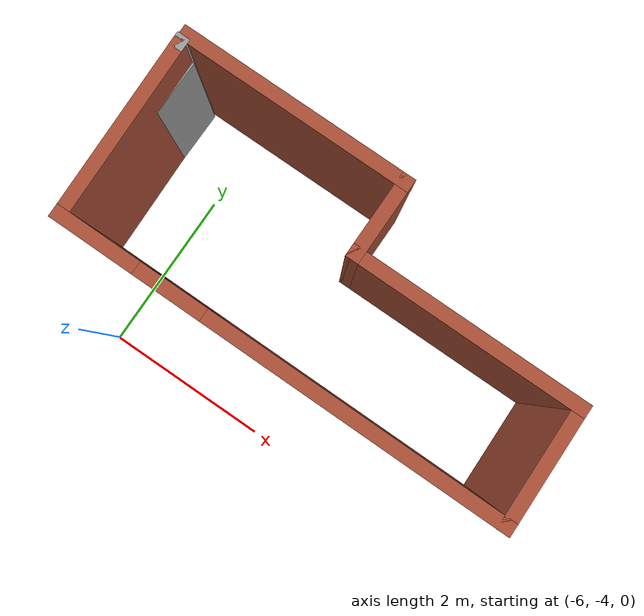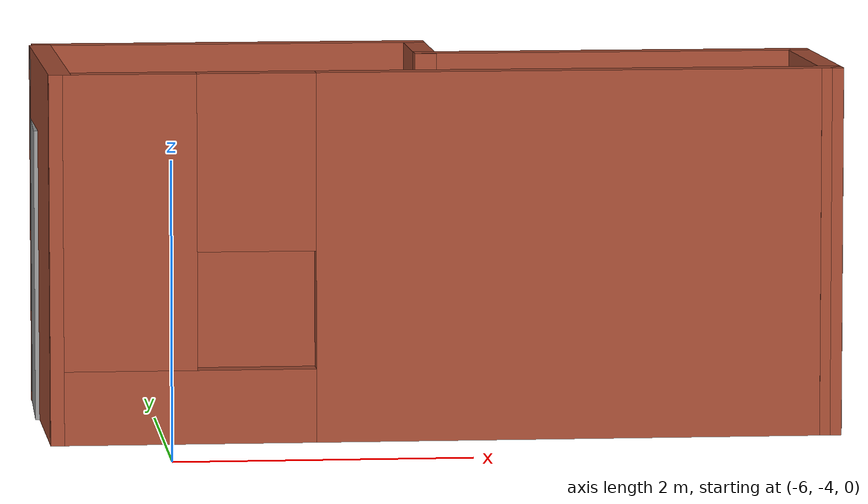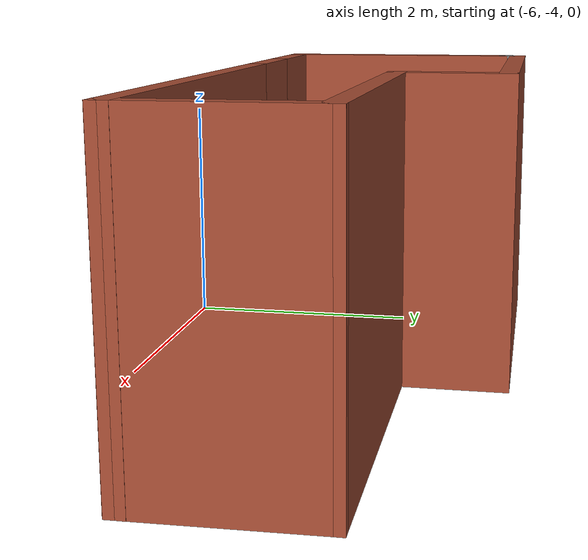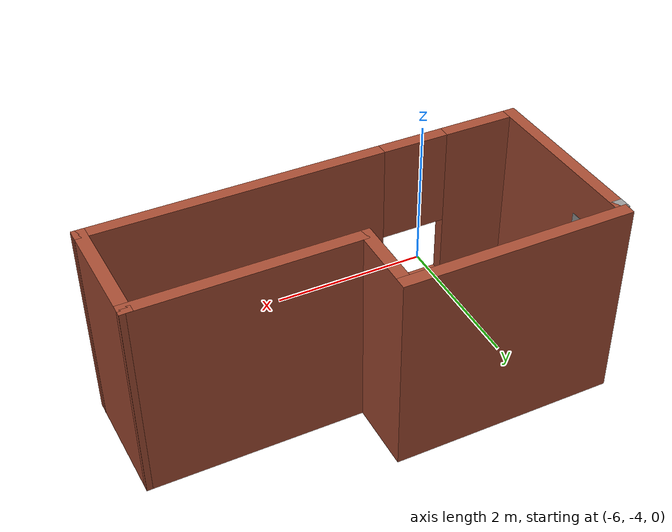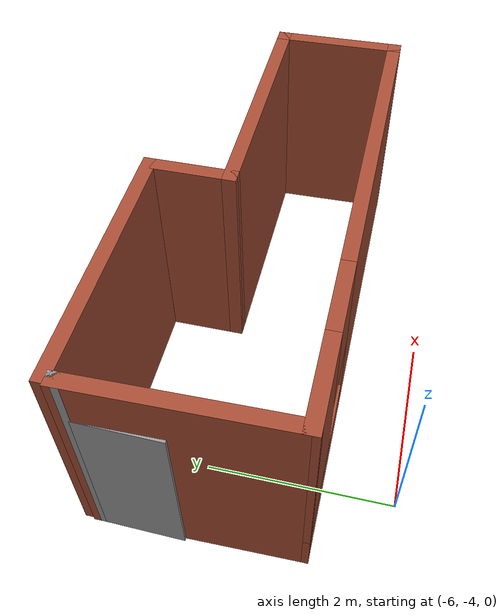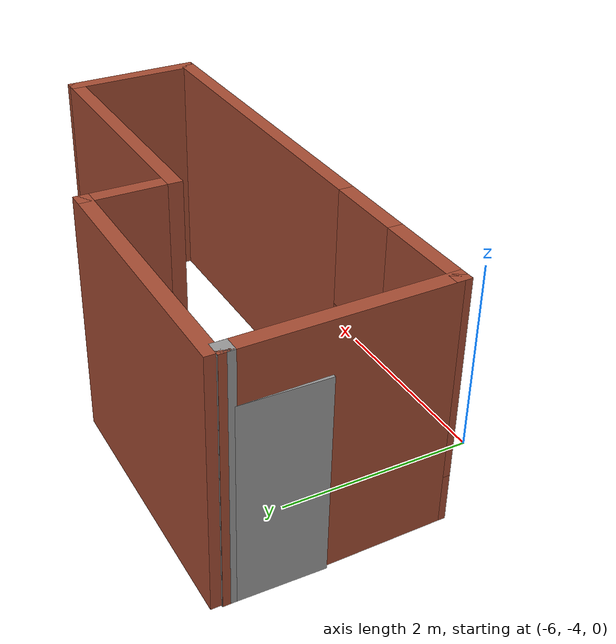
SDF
<?xml version='1.0'?>
<sdf version='1.6'>
  <model name='test'>
    <pose frame=''>-4.11192 -2.0767 0 0 -0 0</pose>
    <link name='Door_1'>
      <collision name='Door_1_Collision'>
        <geometry>
          <box>
            <size>0.9 0.17 2</size>
          </box>
        </geometry>
        <pose frame=''>0 0 1 0 -0 0</pose>
      </collision>
      <visual name='Door_1_Visual'>
        <pose frame=''>0 0 1 0 -0 0</pose>
        <geometry>
          <box>
            <size>0.9 0.17 2</size>
          </box>
        </geometry>
        <material>
          <script>
            <uri>file://media/materials/scripts/gazebo.material</uri>
            <name>Gazebo/Grey</name>
          </script>
        </material>
      </visual>
      <pose frame=''>-2.61797 0.540211 0 0 0 -1.58586</pose>
    </link>
    <link name='Wall_0'>
      <collision name='Wall_0_Collision'>
        <geometry>
          <box>
            <size>2.75 0.15 2.5</size>
          </box>
        </geometry>
        <pose frame=''>0 0 1.25 0 -0 0</pose>
      </collision>
      <visual name='Wall_0_Visual'>
        <pose frame=''>0 0 1.25 0 -0 0</pose>
        <geometry>
          <box>
            <size>2.75 0.15 2.5</size>
          </box>
        </geometry>
        <material>
          <script>
            <uri>file://media/materials/scripts/gazebo.material</uri>
            <name>Gazebo/Bricks</name>
          </script>
          <ambient>1 1 1 1</ambient>
        </material>
      </visual>
      <pose frame=''>-1.30408 1.0877 0 0 -0 0</pose>
    </link>
    <link name='Wall_1'>
      <collision name='Wall_1_Collision'>
        <geometry>
          <box>
            <size>1 0.15 2.5</size>
          </box>
        </geometry>
        <pose frame=''>0 0 1.25 0 -0 0</pose>
      </collision>
      <visual name='Wall_1_Visual'>
        <pose frame=''>0 0 1.25 0 -0 0</pose>
        <geometry>
          <box>
            <size>1 0.15 2.5</size>
          </box>
        </geometry>
        <material>
          <script>
            <uri>file://media/materials/scripts/gazebo.material</uri>
            <name>Gazebo/Bricks</name>
          </script>
          <ambient>1 1 1 1</ambient>
        </material>
      </visual>
      <pose frame=''>-0.004077 0.662696 0 0 0 -1.5708</pose>
    </link>
    <link name='Wall_2'>
      <collision name='Wall_2_Collision'>
        <geometry>
          <box>
            <size>2.75 0.15 2.5</size>
          </box>
        </geometry>
        <pose frame=''>0 0 1.25 0 -0 0</pose>
      </collision>
      <visual name='Wall_2_Visual'>
        <pose frame=''>0 0 1.25 0 -0 0</pose>
        <geometry>
          <box>
            <size>2.75 0.15 2.5</size>
          </box>
        </geometry>
        <material>
          <script>
            <uri>file://media/materials/scripts/gazebo.material</uri>
            <name>Gazebo/Bricks</name>
          </script>
          <ambient>1 1 1 1</ambient>
        </material>
      </visual>
      <pose frame=''>1.29592 0.237696 0 0 -0 0</pose>
    </link>
    <link name='Wall_3'>
      <collision name='Wall_3_Collision'>
        <geometry>
          <box>
            <size>1.47412 0.15 2.5</size>
          </box>
        </geometry>
        <pose frame=''>0 0 1.25 0 -0 0</pose>
      </collision>
      <visual name='Wall_3_Visual'>
        <pose frame=''>0 0 1.25 0 -0 0</pose>
        <geometry>
          <box>
            <size>1.47412 0.15 2.5</size>
          </box>
        </geometry>
        <material>
          <script>
            <uri>file://media/materials/scripts/gazebo.material</uri>
            <name>Gazebo/Bricks</name>
          </script>
          <ambient>1 1 1 1</ambient>
        </material>
      </visual>
      <pose frame=''>2.60892 -0.424304 0 0 0 -1.55116</pose>
    </link>
    <link name='Wall_4'>
      <pose frame=''>0.017923 -1.0813 0 0 -0 3.13967</pose>
      <visual name='Wall_4_Visual_0'>
        <pose frame=''>-0.89546 0 1.25 0 -0 0</pose>
        <geometry>
          <box>
            <size>3.56697 0.15 2.5</size>
          </box>
        </geometry>
        <material>
          <script>
            <uri>file://media/materials/scripts/gazebo.material</uri>
            <name>Gazebo/Bricks</name>
          </script>
          <ambient>1 1 1 1</ambient>
        </material>
      </visual>
      <collision name='Wall_4_Collision_0'>
        <geometry>
          <box>
            <size>3.56697 0.15 2.5</size>
          </box>
        </geometry>
        <pose frame=''>-0.89546 0 1.25 0 -0 0</pose>
      </collision>
      <visual name='Wall_4_Visual_1'>
        <pose frame=''>1.78348 0 0.25 0 -0 0</pose>
        <geometry>
          <box>
            <size>1.79092 0.15 0.5</size>
          </box>
        </geometry>
        <material>
          <script>
            <uri>file://media/materials/scripts/gazebo.material</uri>
            <name>Gazebo/Bricks</name>
          </script>
          <ambient>1 1 1 1</ambient>
        </material>
      </visual>
      <collision name='Wall_4_Collision_1'>
        <geometry>
          <box>
            <size>1.79092 0.15 0.5</size>
          </box>
        </geometry>
        <pose frame=''>1.78348 0 0.25 0 -0 0</pose>
      </collision>
      <visual name='Wall_4_Visual_2'>
        <pose frame=''>2.18348 0 1.5 0 -0 0</pose>
        <geometry>
          <box>
            <size>0.99092 0.15 2</size>
          </box>
        </geometry>
        <material>
          <script>
            <uri>file://media/materials/scripts/gazebo.material</uri>
            <name>Gazebo/Bricks</name>
          </script>
          <ambient>1 1 1 1</ambient>
        </material>
      </visual>
      <collision name='Wall_4_Collision_2'>
        <geometry>
          <box>
            <size>0.99092 0.15 2</size>
          </box>
        </geometry>
        <pose frame=''>2.18348 0 1.5 0 -0 0</pose>
      </collision>
      <visual name='Wall_4_Visual_3'>
        <pose frame=''>1.28802 0 1.9 0 -0 0</pose>
        <geometry>
          <box>
            <size>0.8 0.15 1.2</size>
          </box>
        </geometry>
        <material>
          <script>
            <uri>file://media/materials/scripts/gazebo.material</uri>
            <name>Gazebo/Bricks</name>
          </script>
          <ambient>1 1 1 1</ambient>
        </material>
      </visual>
      <collision name='Wall_4_Collision_3'>
        <geometry>
          <box>
            <size>0.8 0.15 1.2</size>
          </box>
        </geometry>
        <pose frame=''>1.28802 0 1.9 0 -0 0</pose>
      </collision>
    </link>
    <link name='Wall_5'>
      <collision name='Wall_5_Collision'>
        <geometry>
          <box>
            <size>2.21499 0.15 2.5</size>
          </box>
        </geometry>
        <pose frame=''>0 0 1.25 0 -0 0</pose>
      </collision>
      <visual name='Wall_5_Visual'>
        <pose frame=''>0 0 1.25 0 -0 0</pose>
        <geometry>
          <box>
            <size>2.21499 0.15 2.5</size>
          </box>
        </geometry>
        <material>
          <script>
            <uri>file://media/materials/scripts/gazebo.material</uri>
            <name>Gazebo/Bricks</name>
          </script>
          <ambient>1 1 1 1</ambient>
        </material>
      </visual>
      <pose frame=''>-2.60408 -0.044304 0 0 -0 1.58824</pose>
    </link>
    <link name='Wall_6'>
      <collision name='Wall_6_Collision'>
        <geometry>
          <box>
            <size>0.15 0.15 2.5</size>
          </box>
        </geometry>
        <pose frame=''>0 0 1.25 0 -0 0</pose>
      </collision>
      <visual name='Wall_6_Visual'>
        <pose frame=''>0 0 1.25 0 -0 0</pose>
        <geometry>
          <box>
            <size>0.15 0.15 2.5</size>
          </box>
        </geometry>
        <material>
          <script>
            <uri>file://media/materials/scripts/gazebo.material</uri>
            <name>Gazebo/Grey</name>
          </script>
          <ambient>1 1 1 1</ambient>
        </material>
      </visual>
      <pose frame=''>-2.62208 0.987696 0 0 -0 0</pose>
    </link>
    <static>1</static>
  </model>
</sdf>
